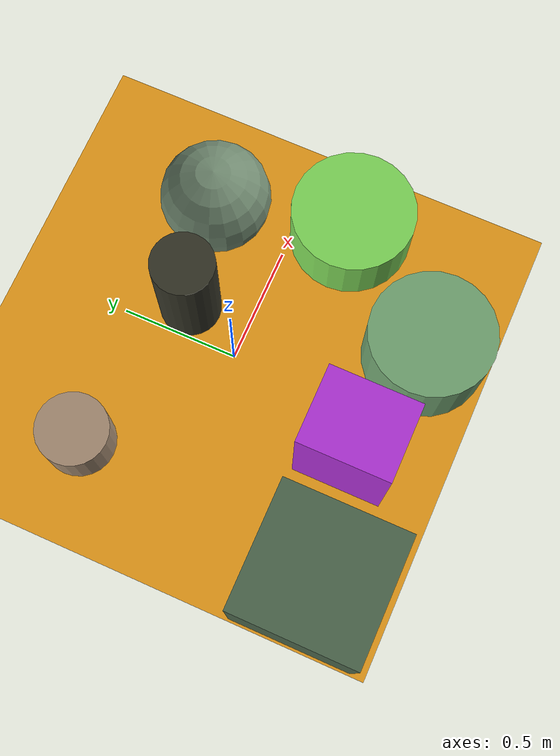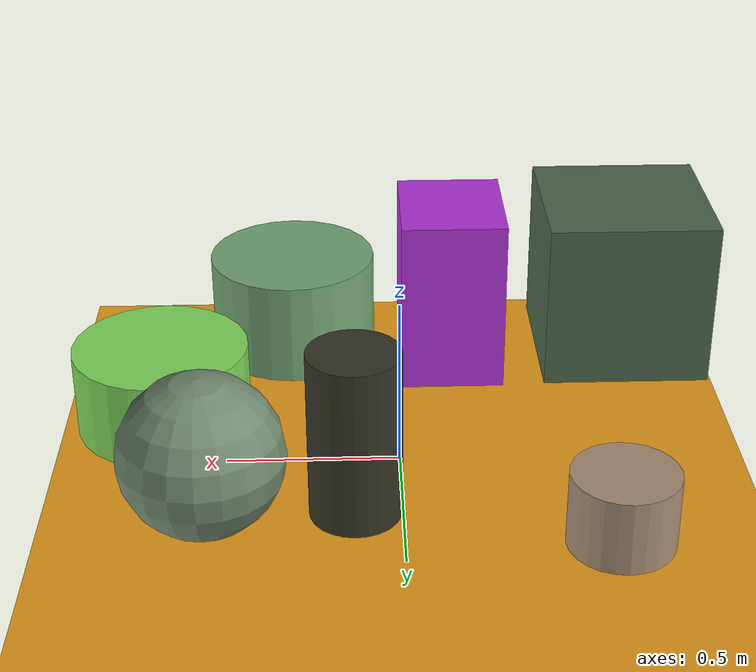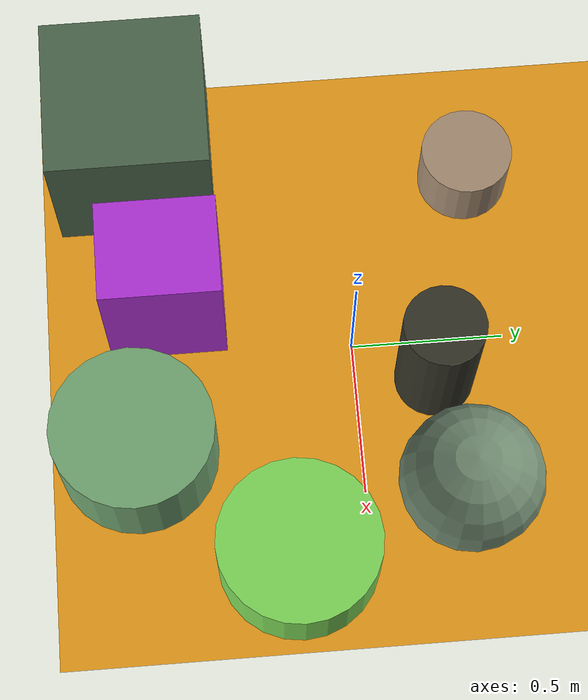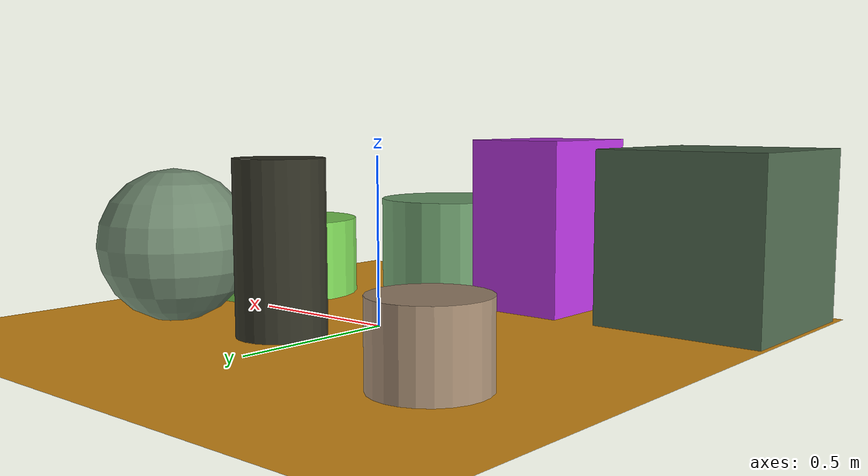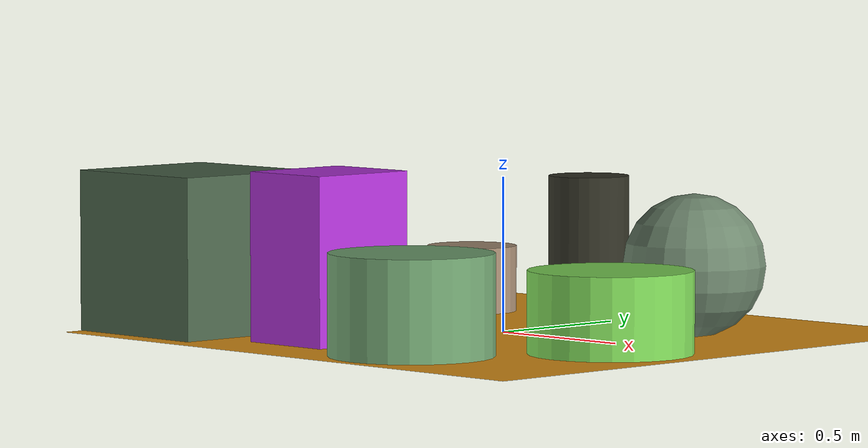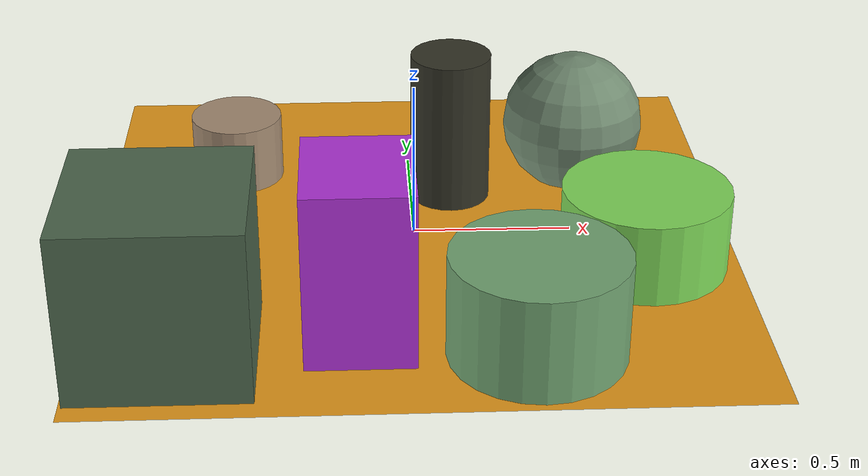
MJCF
<mujoco>
   <asset>
<texture type="skybox" builtin="gradient" rgb1="0.7 0.8 0.4" rgb2="0.6 0.6 0.6" width="256" height="256"/>
<texture name="gradient_0" builtin="gradient" rgb1="0.7 0.3 0.7" rgb2="0.6 0.8 0.2" width="200" height="200"/>
<texture name="checker_1" builtin="checker" type="2d" rgb1="0.6 1.0 0.3" rgb2="0.3 0.3 0.6" width="200" height="200"/>
<texture name="gradient_2" builtin="gradient" rgb1="0.7 0.3 1.0" rgb2="0.7 0.1 0.7" width="200" height="200"/>
<texture name="gradient_3" builtin="gradient" rgb1="0.6 0.8 0.3" rgb2="0.4 0.9 0.4" width="200" height="200"/>
<texture name="gradient_4" builtin="gradient" rgb1="0.3 0.0 0.2" rgb2="0.1 0.4 0.1" width="200" height="200"/>
<texture name="checker_5" builtin="checker" type="2d" rgb1="0.0 0.8 0.1" rgb2="0.9 0.3 0.8" width="200" height="200"/>
<texture name="flat_6" builtin="flat" rgb1="0.3 0.4 0.3" rgb2="0.3 0.4 0.3"  width="200" height="200"/><material name="gradient_0_mat" reflectance="0" texture="gradient_0" texuniform="true"/>
<material name="checker_1_mat" reflectance="0" texrepeat="9 9" texture="checker_1" texuniform="false" />
<material name="gradient_2_mat" reflectance="0" texture="gradient_2" texuniform="true"/>
<material name="gradient_3_mat" reflectance="0" texture="gradient_3" texuniform="true"/>
<material name="gradient_4_mat" reflectance="0" texture="gradient_4" texuniform="true"/>
<material name="checker_5_mat" reflectance="0" texrepeat="6 6" texture="checker_5" texuniform="false" />
<material name="flat_6_mat" reflectance="0" texture="flat_6" texuniform="true"/>
   </asset>

   <worldbody>
      <light diffuse=".9 .9 .9" pos="0 0 3" dir="0 0 -1"/>
     <geom type="plane" size="1 1 0.1" rgba="0.9 0.6 0.1 1"/>
<geom type="cylinder" pos="-0.58 0.43 0.11" size="0.15 0.11 0.11" material="gradient_0_mat" />
<geom type="cylinder" pos="0.32 -0.72 0.16" size="0.26 0.16 0.16" material="checker_1_mat" />
<geom type="box" pos="-0.18 -0.6 0.27" size="0.16 0.19 0.27" material="gradient_2_mat" />
<geom type="cylinder" pos="0.7 -0.23 0.13" size="0.26 0.13 0.13" material="gradient_3_mat" />
<geom type="cylinder" pos="0.13 0.26 0.25" size="0.13 0.25 0.25" material="gradient_4_mat" />
<geom type="sphere" pos="0.54 0.32 0.23" size="0.23 0.23 0.23" material="checker_5_mat" />
<geom type="box" pos="-0.73 -0.68 0.26" size="0.26 0.26 0.26" material="flat_6_mat" /><camera euler="60 0 180" fovy="60" name="camera_a" pos="0 -1.5 1"></camera>   </worldbody>
</mujoco>
